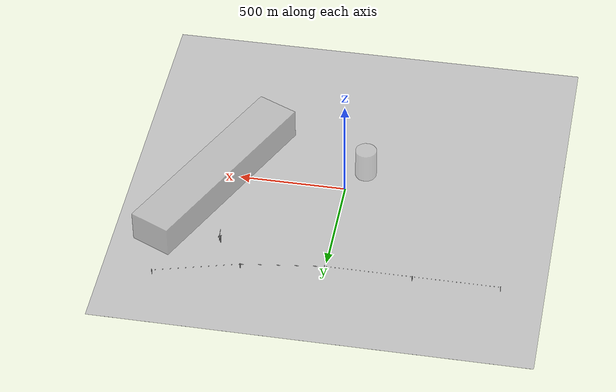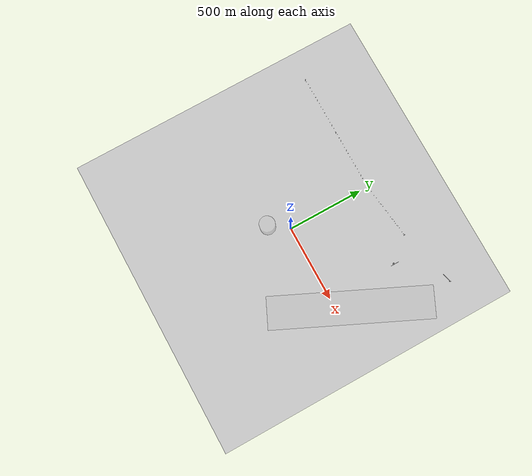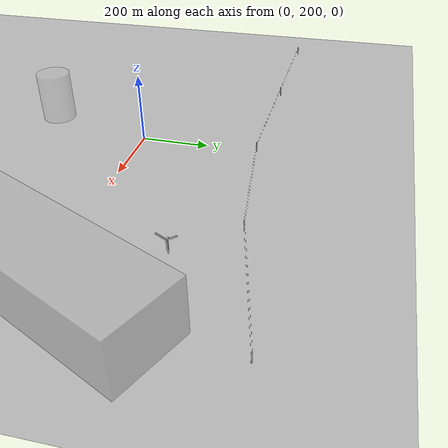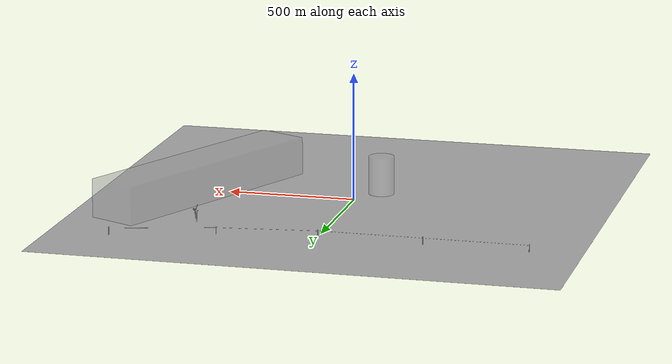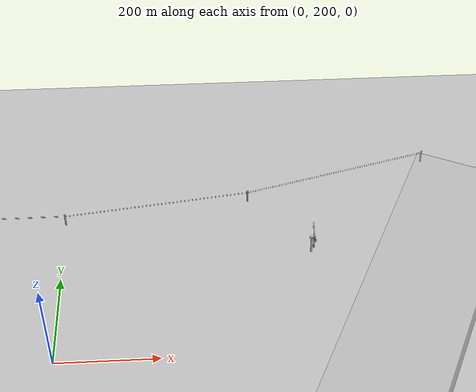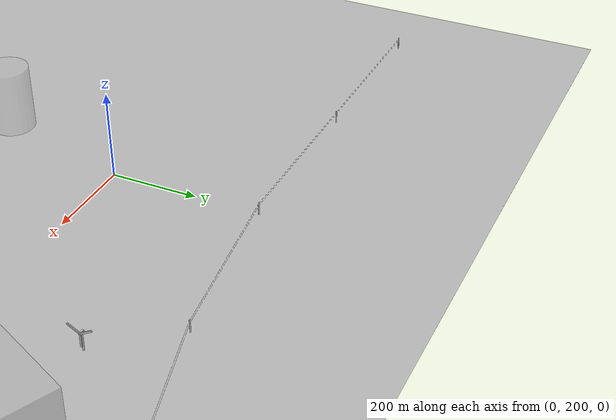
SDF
<sdf version="1.6">
 <world name="arenosillo_trials">
  <physics type="ode">
   <ode>
    <solver><type>quick</type><iters>10</iters><sor>1.3</sor></solver>
    <constraints>
     <cfm>0</cfm>
     <erp>0.2</erp>
     <contact_max_correcting_vel>100</contact_max_correcting_vel>
     <contact_surface_layer>0.001</contact_surface_layer>
    </constraints>
   </ode>
   <max_step_size>0.002</max_step_size>
   <real_time_update_rate>500</real_time_update_rate>
   <real_time_factor>1</real_time_factor>
   <gravity>0 0 -9.8</gravity>
   <magnetic_field>6e-06 2.3e-05 -4.2e-05</magnetic_field>
  </physics>
  <include><uri>model://sun</uri></include>
  <include><uri>model://arenosillo</uri></include>
  <model name="WT_tower">
   <static>1</static>
   <link name="link">
    <collision name="collision">
     <geometry><cylinder><radius>1</radius><length>20</length></cylinder></geometry>
    </collision>
    <visual name="visual"><geometry><cylinder><radius>2</radius><length>40</length></cylinder></geometry></visual>
   </link>
   <pose>500 450 20 0 -0 0</pose>
  </model>
  <model name="WT_engine">
   <static>1</static>
   <link name="link">
    <collision name="collision"><geometry><box><size>4 4 10</size></box></geometry></collision>
    <visual name="visual"><geometry><box><size>4 4 10</size></box></geometry></visual>
   </link>
   <pose>500 450 42.5 0 1.57 0</pose>
  </model>
  <model name="WT_blade_center">
   <static>1</static>
   <link name="link">
    <collision name="collision"><geometry><sphere><radius>2</radius></sphere></geometry></collision>
    <visual name="visual"><geometry><sphere><radius>2</radius></sphere></geometry></visual>
   </link>
   <pose>505 450 42.5 0 1.57 0</pose>
  </model>
  <model name="WT_blade_1">
   <static>1</static>
   <link name="link">
    <collision name="collision"><geometry><box><size>2 4 30</size></box></geometry></collision>
    <visual name="visual"><geometry><box><size>2 4 30</size></box></geometry></visual>
   </link>
   <pose>505 450 27.5 0 -0 0</pose>
  </model>
  <model name="WT_blade_2">
   <static>1</static>
   <link name="link">
    <collision name="collision"><geometry><box><size>2 4 30</size></box></geometry></collision>
    <visual name="visual"><geometry><box><size>2 4 30</size></box></geometry></visual>
   </link>
   <pose>505 463 50 2.0944 -0 0</pose>
  </model>
  <model name="WT_blade_3">
   <static>1</static>
   <link name="link">
    <collision name="collision"><geometry><box><size>2 4 30</size></box></geometry></collision>
    <visual name="visual"><geometry><box><size>2 4 30</size></box></geometry></visual>
   </link>
   <pose>505 437 50 -2.0944 0 0</pose>
  </model>
  <model name="PL_base_1">
   <static>1</static>
   <link name="link">
    <collision name="collision">
     <geometry><cylinder><radius>1.5</radius><length>30</length></cylinder></geometry>
    </collision>
    <visual name="visual">
     <geometry><cylinder><radius>1.5</radius><length>30</length></cylinder></geometry>
    </visual>
   </link>
   <pose>-800 550 15 0 -0 0</pose>
  </model>
  <model name="PL_wire1_1_2">
   <static>1</static>
   <link name="link">
    <collision name="collision">
     <geometry><cylinder><radius>0.15</radius><length>400</length></cylinder></geometry>
    </collision>
    <visual name="visual">
     <geometry><cylinder><radius>0.15</radius><length>400</length></cylinder></geometry>
    </visual>
   </link>
   <pose>-600 551.5 25 3.14159 1.57079 3.14159</pose>
  </model>
  <model name="PL_wire2_1_2">
   <static>1</static>
   <link name="link">
    <collision name="collision">
     <geometry><cylinder><radius>0.15</radius><length>400</length></cylinder></geometry>
    </collision>
    <visual name="visual">
     <geometry><cylinder><radius>0.15</radius><length>400</length></cylinder></geometry>
    </visual>
   </link>
   <pose>-600 548.5 25 3.14159 1.57079 3.14159</pose>
  </model>
  <model name="PL_base_2">
   <static>1</static>
   <link name="link">
    <collision name="collision">
     <geometry><cylinder><radius>1.5</radius><length>30</length></cylinder></geometry>
    </collision>
    <visual name="visual">
     <geometry><cylinder><radius>1.5</radius><length>30</length></cylinder></geometry>
    </visual>
   </link>
   <pose>-400 550 15 0 -0 0</pose>
  </model>
  <model name="PL_wire1_2_3">
   <static>1</static>
   <link name="link">
    <collision name="collision">
     <geometry><cylinder><radius>0.15</radius><length>400</length></cylinder></geometry>
    </collision>
    <visual name="visual">
     <geometry><cylinder><radius>0.15</radius><length>400</length></cylinder></geometry>
    </visual>
   </link>
   <pose>-200 551.5 25 3.14159 1.57079 3.14159</pose>
  </model>
  <model name="PL_wire2_2_3">
   <static>1</static>
   <link name="link">
    <collision name="collision">
     <geometry><cylinder><radius>0.15</radius><length>400</length></cylinder></geometry>
    </collision>
    <visual name="visual">
     <geometry><cylinder><radius>0.15</radius><length>400</length></cylinder></geometry>
    </visual>
   </link>
   <pose>-200 548.5 25 3.14159 1.57079 3.14159</pose>
  </model>
  <model name="PL_base_3">
   <static>1</static>
   <link name="link">
    <collision name="collision">
     <geometry><cylinder><radius>1.5</radius><length>30</length></cylinder></geometry>
    </collision>
    <visual name="visual">
     <geometry><cylinder><radius>1.5</radius><length>30</length></cylinder></geometry>
    </visual>
   </link>
   <pose>0 550 15 0 -0 0.302885</pose>
  </model>
  <model name="PL_wire1_3_4">
   <static>1</static>
   <link name="link">
    <collision name="collision">
     <geometry><cylinder><radius>0.15</radius><length>400</length></cylinder></geometry>
    </collision>
    <visual name="visual">
     <geometry><cylinder><radius>0.15</radius><length>382</length></cylinder></geometry>
    </visual>
   </link>
   <pose>189.5 576.25 25 3.14159 1.57079 -3.012</pose>
  </model>
  <model name="PL_wire2_3_4">
   <static>1</static>
   <link name="link">
    <collision name="collision">
     <geometry><cylinder><radius>0.15</radius><length>400</length></cylinder></geometry>
    </collision>
    <visual name="visual">
     <geometry><cylinder><radius>0.15</radius><length>382</length></cylinder></geometry>
    </visual>
   </link>
   <pose>189.5 573.25 25 3.14159 1.57079 -3.012</pose>
  </model>
  <model name="PL_base_4">
   <static>1</static>
   <link name="link">
    <collision name="collision">
     <geometry><cylinder><radius>1.5</radius><length>30</length></cylinder></geometry>
    </collision>
    <visual name="visual">
     <geometry><cylinder><radius>1.5</radius><length>30</length></cylinder></geometry>
    </visual>
   </link>
   <pose>379 599.4 15 0 -0 0.302885</pose>
  </model>
  <model name="PL_wire1_4_5">
   <static>1</static>
   <link name="link">
    <collision name="collision">
     <geometry><cylinder><radius>0.15</radius><length>400</length></cylinder></geometry>
    </collision>
    <visual name="visual">
     <geometry><cylinder><radius>0.15</radius><length>400</length></cylinder></geometry>
    </visual>
   </link>
   <pose>572.241 652.75 25 3.14159 1.57079 -2.88</pose>
  </model>
  <model name="PL_wire2_4_5">
   <static>1</static>
   <link name="link">
    <collision name="collision">
     <geometry><cylinder><radius>0.15</radius><length>400</length></cylinder></geometry>
    </collision>
    <visual name="visual">
     <geometry><cylinder><radius>0.15</radius><length>400</length></cylinder></geometry>
    </visual>
   </link>
   <pose>573.135 649.75 25 3.14159 1.57079 -2.88</pose>
  </model>
  <model name="PL_base_5">
   <static>1</static>
   <link name="link">
    <collision name="collision">
     <geometry><cylinder><radius>1.5</radius><length>30</length></cylinder></geometry>
    </collision>
    <visual name="visual">
     <geometry><cylinder><radius>1.5</radius><length>30</length></cylinder></geometry>
    </visual>
   </link>
   <pose>765 702.75 15 0 -0 0.302885</pose>
  </model>
  <model name="NDZ_campsite">
   <static>1</static>
   <link name="link">
    <collision name="collision"><geometry><box><size>1000 200 150</size></box></geometry></collision>
    <visual name="visual">
     <transparency>0.5</transparency>
     <geometry><box><size>1000 200 150</size></box></geometry>
    </visual>
   </link>
   <pose>600 75 75 0 0 1.135</pose>
  </model>
  <model name="Geofence_1">
   <static>1</static>
   <link name="link">
    <collision name="collision">
     <geometry><cylinder><radius>50</radius><length>150</length></cylinder></geometry>
    </collision>
    <visual name="visual">
     <transparency>0.75</transparency>
     <geometry><cylinder><radius>50</radius><length>150</length></cylinder></geometry>
    </visual>
   </link>
   <pose>-80 -120 75 0 0 0</pose>
  </model>
 </world>
</sdf>

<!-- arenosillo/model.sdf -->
<sdf version="1.5">
  <model name="arenosillo">
    <static>true</static>
    <link name="floor">
      <collision name="collision">
        <geometry>
          <box>
            <size>2000 2000 .1</size>
          </box>
        </geometry>
      </collision>
      <visual name="visual">
        <cast_shadows>false</cast_shadows>
        <geometry>
          <box>
            <size>2000 2000 .1</size>
          </box>
        </geometry>
        <material>
          <script>
            <uri>model://arenosillo/materials/scripts</uri>
            <uri>model://arenosillo/materials/textures</uri>
            <name>arenosillo</name>
          </script>
        </material>
      </visual>
    </link>
  </model>
</sdf>
